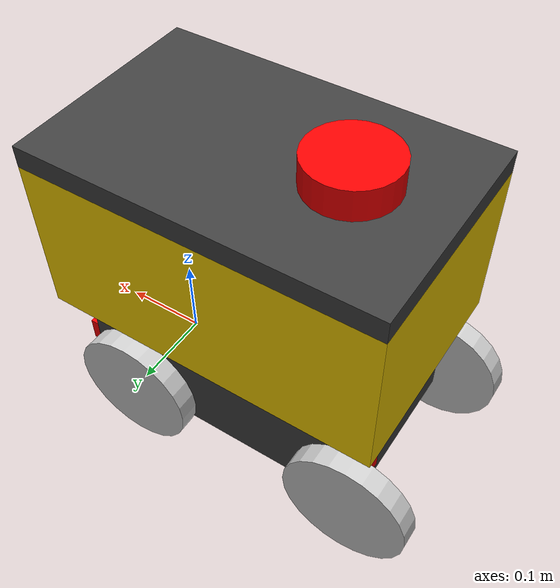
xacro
<?xml version="1.0"?>
<robot xmlns:xacro="http://www.ros.org/wiki/xacro"  name="robot">

    <xacro:include filename="robot_core.xacro" />

    <!-- Include file that defines extra Gazebo options and motion control driver -->
    <xacro:include filename="robot.gazebo" />

    <xacro:include filename="lidar.xacro" />

    <xacro:include filename="front_camera.xacro" />
    <xacro:include filename="rear_camera.xacro" />

</robot>

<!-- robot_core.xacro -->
<robot xmlns:xacro="http://www.ros.org/wiki/xacro" >

    <!-- UNITS: Metric units for everything. Kilograms for mass and Meters for length -->

    <xacro:include filename="inertial_macros.xacro"/>

    <xacro:property name="chassis_base_length" value="0.3556"/>
    <xacro:property name="chassis_base_width" value="0.2032"/>
    <xacro:property name="chassis_base_height" value="0.1397"/>
    <xacro:property name="chassis_base_mass" value="1.0"/>
    <xacro:property name="chassis_top_length" value="0.4064"/>
    <xacro:property name="chassis_top_width" value="0.254"/>
    <xacro:property name="chassis_top_height" value="0.1905"/>
    <xacro:property name="chassis_top_mass" value="1.0"/>
    <xacro:property name="lid_thickness" value="0.0254"/>
    <xacro:property name="wheel_radius" value="0.0762"/>
    <xacro:property name="wheel_thickness" value="0.0254"/>
    <xacro:property name="wheel_mass" value="0.05"/>
    <xacro:property name="front_wheel_offset_x" value="0.22733"/>
    <xacro:property name="back_wheel_offset_x" value="0.291465"/>
    <xacro:property name="wheel_offset_y" value="0.1143"/>
    <xacro:property name="wheel_offset_z" value="0.026035"/>

    <material name="white">
        <color rgba="1 1 1 1" />
    </material>

    <material name="orange">
        <color rgba="1 0.3 0.1 1"/>
    </material>

    <material name="blue">
        <color rgba="0.2 0.2 1 1"/>
    </material>

    <material name="black">
        <color rgba="0.25 0.25 0.25 1"/>
    </material>

    <material name="red">
        <color rgba="1 0 0 1"/>
    </material>

    <material name="gray">
        <color rgba="0.8 0.8 0.8 1"/>
    </material>

    <material name="gold">
        <color rgba="1 0.84 0 1"/>
    </material>

    <!-- BASE LINK -->

    <link name="base_link">

    </link>

    <!-- BASE_FOOTPRINT LINK -->

    <joint name="base_footprint_joint" type="fixed">
        <parent link="base_link"/>
        <child link="base_footprint"/>
        <origin xyz="0 0 0" rpy="0 0 0"/>
    </joint>

    <link name="base_footprint">
    </link>

    <!-- CHASSIS BASE LINK -->

    <joint name="chassis_base_joint" type="fixed">
        <parent link="base_link"/>
        <child link="chassis_base"/>
        <!-- change this so that the origin is on the complete back wall -->
        <origin xyz="${-back_wheel_offset_x} 0 ${-wheel_offset_z}"/>
    </joint>

    <link name="chassis_base">
        <visual>
            <origin xyz="${chassis_base_length/2} 0 ${chassis_base_height/2}"/>
            <geometry>
                <box size="${chassis_base_length} ${chassis_base_width} ${chassis_base_height}"/>
            </geometry>
            <material name="black"/>
        </visual>
        <collision>
            <origin xyz="${chassis_base_length/2} 0 ${chassis_base_height/2}"/>
            <geometry>
                <box size="${chassis_base_length} ${chassis_base_width} ${chassis_base_height}"/>
            </geometry>
        </collision>
        <xacro:inertial_box mass="0.5" x="${chassis_base_length}" y="${chassis_base_width}" z="${chassis_base_height}">
            <!-- origin should match visual origin -->
            <origin xyz="${chassis_base_length/2} 0 ${chassis_base_height/2}" rpy="0 0 0"/>
        </xacro:inertial_box>
    </link>

    <gazebo reference="chassis_base">
        <material>Gazebo/Black</material>
    </gazebo>

    <!-- CHASSIS TOP LINK -->

    <joint name="chassis_top_joint" type="fixed">
        <origin xyz="${chassis_base_length/2} 0 ${chassis_base_height}" rpy="0 0 0" />
        <parent link="chassis_base"/>
        <child link="chassis_top"/>
    </joint>

    <link name="chassis_top">
        <visual>
            <origin xyz="0 0 ${chassis_top_height/2}"/>
            <geometry>
                <box size="${chassis_top_length} ${chassis_top_width} ${chassis_top_height}" />
            </geometry>
            <material name="gold" />
        </visual>
        <collision>
            <origin xyz="0 0 0" rpy="0 0 0" />
            <geometry>
                <box size="${chassis_top_length} ${chassis_top_width} ${chassis_top_height}" />
            </geometry>
        </collision>
    </link>

    <gazebo reference="chassis_top">
        <material>Gazebo/Gold</material>
    </gazebo>

    <!-- LID LINK -->

    <joint name="lid_joint" type="fixed">
        <origin xyz="0 0 ${chassis_top_height}" />
        <parent link="chassis_top"/>
        <child link="lid"/>
    </joint>

    <link name="lid">
        <visual>
            <origin xyz="0 0 ${lid_thickness/2}" />
            <geometry>
                <box size="${chassis_top_length} ${chassis_top_width} ${lid_thickness}" />
            </geometry>
            <material name="black" />
        </visual>
        <collision>
            <origin xyz="0 0 ${lid_thickness}" />
            <geometry>
                <box size="${chassis_top_length} ${chassis_top_width} ${lid_thickness}" />
            </geometry>
        </collision>
    </link>

    <gazebo reference="lid">
        <material>Gazebo/Black</material>
    </gazebo>

    <!-- FRONT LEFT WHEEL LINK -->

    <joint name="front_left_wheel_joint" type="continuous">
        <parent link="base_link"/>
        <child link="front_left_wheel"/>
        <origin xyz="0 ${wheel_offset_y} 0" rpy="-${pi/2} 0 0" />
        <axis xyz="0 0 1"/>
    </joint>

    <link name="front_left_wheel">
        <visual>
            <geometry>
                <cylinder radius="${wheel_radius}" length="${wheel_thickness}"/>
            </geometry>
            <material name="gray"/>
        </visual>
        <collision>
            <geometry>
                <sphere radius="${wheel_radius}"/>
            </geometry>
        </collision>
        <xacro:inertial_cylinder mass="${wheel_mass}" length="${wheel_thickness}" radius="${wheel_radius}">
            <!-- origin should match visual origin -->
            <origin xyz="0 0 0" rpy="0 0 0"/>
        </xacro:inertial_cylinder>
    </link>

    <gazebo reference="front_left_wheel">
        <material>Gazebo/Gray</material>
    </gazebo>

    <!-- BACK LEFT WHEEL LINK -->

    <joint name="back_left_wheel_joint" type="continuous">
        <parent link="base_link"/>
        <child link="back_left_wheel"/>
        <origin xyz="${-back_wheel_offset_x} ${wheel_offset_y} 0" rpy="-${pi/2} 0 0" />
        <axis xyz="0 0 1"/>
    </joint>

    <link name="back_left_wheel">
        <visual>
            <geometry>
                <cylinder radius="${wheel_radius}" length="${wheel_thickness}"/>
            </geometry>
            <material name="gray"/>
        </visual>
        <collision>
            <geometry>
                <sphere radius="${wheel_radius}"/>
            </geometry>
        </collision>
        <xacro:inertial_cylinder mass="${wheel_mass}" length="${wheel_thickness}" radius="${wheel_radius}">
            <!-- origin should match visual origin -->
            <origin xyz="0 0 0" rpy="0 0 0"/>
        </xacro:inertial_cylinder>
    </link>

    <gazebo reference="back_left_wheel">
        <material>Gazebo/Gray</material>
    </gazebo>

    <!-- FRONT RIGHT WHEEL LINK -->

    <joint name="front_right_wheel_joint" type="continuous">
        <parent link="base_link"/>
        <child link="front_right_wheel"/>
        <origin xyz="0 ${-wheel_offset_y} 0" rpy="${pi/2} 0 0" />
        <axis xyz="0 0 -1"/>
    </joint>

    <link name="front_right_wheel">
        <visual>
            <geometry>
                <cylinder radius="${wheel_radius}" length="${wheel_thickness}"/>
            </geometry>
            <material name="gray"/>
        </visual>
        <collision>
            <geometry>
                <sphere radius="${wheel_radius}"/>
            </geometry>
        </collision>
        <xacro:inertial_cylinder mass="${wheel_mass}" length="${wheel_thickness}" radius="${wheel_radius}">
            <!-- origin should match visual origin -->
            <origin xyz="0 0 0" rpy="0 0 0"/>
        </xacro:inertial_cylinder>
    </link>

    <gazebo reference="front_right_wheel">
        <material>Gazebo/Gray</material>
    </gazebo>

    <!-- BACK RIGHT WHEEL LINK -->

    <joint name="back_right_wheel_joint" type="continuous">
        <parent link="base_link"/>
        <child link="back_right_wheel"/>
        <origin xyz="${-back_wheel_offset_x} ${-wheel_offset_y} 0" rpy="${pi/2} 0 0" />
        <axis xyz="0 0 -1"/>
    </joint>

    <link name="back_right_wheel">
        <visual>
            <geometry>
                <cylinder radius="${wheel_radius}" length="${wheel_thickness}"/>
            </geometry>
            <material name="gray"/>
        </visual>
        <collision>
            <geometry>
                <sphere radius="${wheel_radius}"/>
            </geometry>
        </collision>
        <xacro:inertial_cylinder mass="${wheel_mass}" length="${wheel_thickness}" radius="${wheel_radius}">
            <!-- origin should match visual origin -->
            <origin xyz="0 0 0" rpy="0 0 0"/>
        </xacro:inertial_cylinder>
    </link>

    <gazebo reference="back_right_wheel">
        <material>Gazebo/Gray</material>
    </gazebo>

</robot>

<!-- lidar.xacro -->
<robot xmlns:xacro="http://www.ros.org/wiki/xacro">

    <joint name="laser_joint" type="fixed">
        <parent link="lid"/>
        <child link="laser_frame"/>
        <!-- Change origin in a minute -->
        <origin xyz="-0.09525 0 0.04" rpy="0 0 0"/>
    </joint>

    <link name="laser_frame">
        <visual>
            <geometry>
                <cylinder radius="0.05" length="0.04"/>
            </geometry>
            <material name="red"/>
        </visual>
        <collision>
            <geometry>
                <cylinder radius="0.05" length="0.04"/>
            </geometry>
        </collision>
        <xacro:inertial_cylinder mass="0.1" length="0.04" radius="0.05">
            <origin xyz="0 0 0" rpy="0 0 0"/>
        </xacro:inertial_cylinder>
    </link>

    <gazebo reference="laser_frame">
        <material>Gazebo/Red</material>

        <sensor name="laser" type="ray">
            <pose> 0 0 0 0 0 0 </pose>
            <visualize>true</visualize>
            <update_rate>10</update_rate>
            <ray>
                <scan>
                    <horizontal>
                        <samples>360</samples>
                        <min_angle>-3.14</min_angle>
                        <max_angle>3.14</max_angle>
                    </horizontal>
                </scan>
                <range>
                    <min>0.3</min>
                    <max>12</max>
                </range>
            </ray>
            <plugin name="laser_controller" filename="libgazebo_ros_ray_sensor.so">
                <ros>
                    <!-- Data Published Here to this topic -->
                    <argument>~/out:=scan</argument>
                </ros>
                <output_type>sensor_msgs/LaserScan</output_type>
                <frame_name>laser_frame</frame_name>
            </plugin>
        </sensor>
    </gazebo>

</robot>

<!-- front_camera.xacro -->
<robot xmlns:xacro="http://www.ros.org/wiki/xacro" >

    <joint name="front_camera_joint" type="fixed">
        <parent link="chassis_base"/>
        <child link="front_camera_link"/>
        <origin xyz="0.361 0.0866 0.06985" rpy="0 0 0"/>
    </joint>

    <link name="front_camera_link">
        <visual>
            <geometry>
                <box size="0.010 0.03 0.03"/>
            </geometry>
            <material name="red"/>
        </visual>
    </link>

    <joint name="front_camera_optical_joint" type="fixed">
        <parent link="front_camera_link"/>
        <child link="front_camera_link_optical"/>
        <origin xyz="0 0 0" rpy="${-pi/2} 0 ${-pi/2}"/>
    </joint>

    <link name="front_camera_link_optical"></link>

    <gazebo reference="front_camera_link">
        <material>Gazebo/Red</material>

        <sensor name="front_camera" type="camera">
            <pose> 0 0 0 0 0 0 </pose>
            <visualize>true</visualize>
            <update_rate>10</update_rate>
            <camera>
                <horizontal_fov>1.089</horizontal_fov>
                <image>
                    <format>R8G8B8</format>
                    <width>640</width>
                    <height>480</height>
                </image>
                <clip>
                    <near>0.05</near>
                    <far>8.0</far>
                </clip>
            </camera>
            <plugin name="front_camera_controller" filename="libgazebo_ros_camera.so">
                <frame_name>front_camera_link_optical</frame_name>
            </plugin>
        </sensor>
    </gazebo>

</robot>

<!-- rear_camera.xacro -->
<robot xmlns:xacro="http://www.ros.org/wiki/xacro" >

    <joint name="rear_camera_joint" type="fixed">
        <parent link="chassis_base"/>
        <child link="rear_camera_link"/>
        <origin xyz="-0.005 0.0866 0.06985" rpy="0 0 ${-pi}"/>
    </joint>

    <link name="rear_camera_link">
        <visual>
            <geometry>
                <box size="0.010 0.03 0.03"/>
            </geometry>
            <material name="red"/>
        </visual>
    </link>

    <joint name="rear_camera_optical_joint" type="fixed">
        <parent link="rear_camera_link"/>
        <child link="rear_camera_link_optical"/>
        <origin xyz="0 0 0" rpy="${-pi/2} 0 ${-pi/2}"/>
    </joint>

    <link name="rear_camera_link_optical"></link>

    <gazebo reference="rear_camera_link">
        <material>Gazebo/Red</material>

        <sensor name="rear_camera" type="camera">
            <pose> 0 0 0 0 0 0 </pose>
            <visualize>true</visualize>
            <update_rate>10</update_rate>
            <camera>
                <horizontal_fov>1.089</horizontal_fov>
                <image>
                    <format>R8G8B8</format>
                    <width>640</width>
                    <height>480</height>
                </image>
                <clip>
                    <near>0.05</near>
                    <far>8.0</far>
                </clip>
            </camera>
            <plugin name="rear_camera_controller" filename="libgazebo_ros_camera.so">
                <frame_name>rear_camera_link_optical</frame_name>
            </plugin>
        </sensor>
    </gazebo>

</robot>
